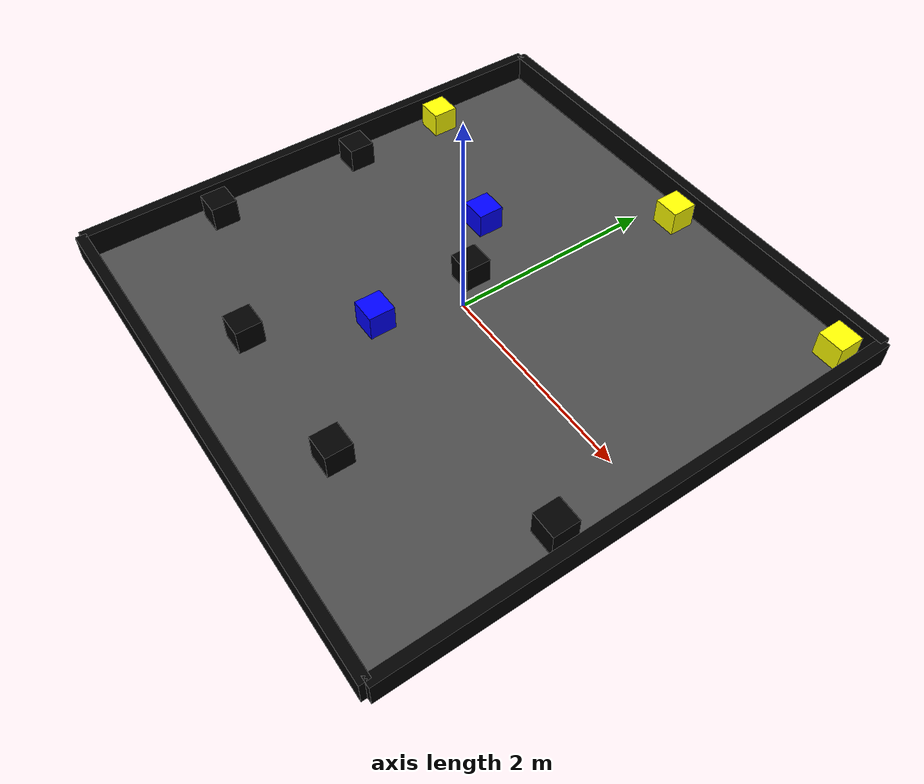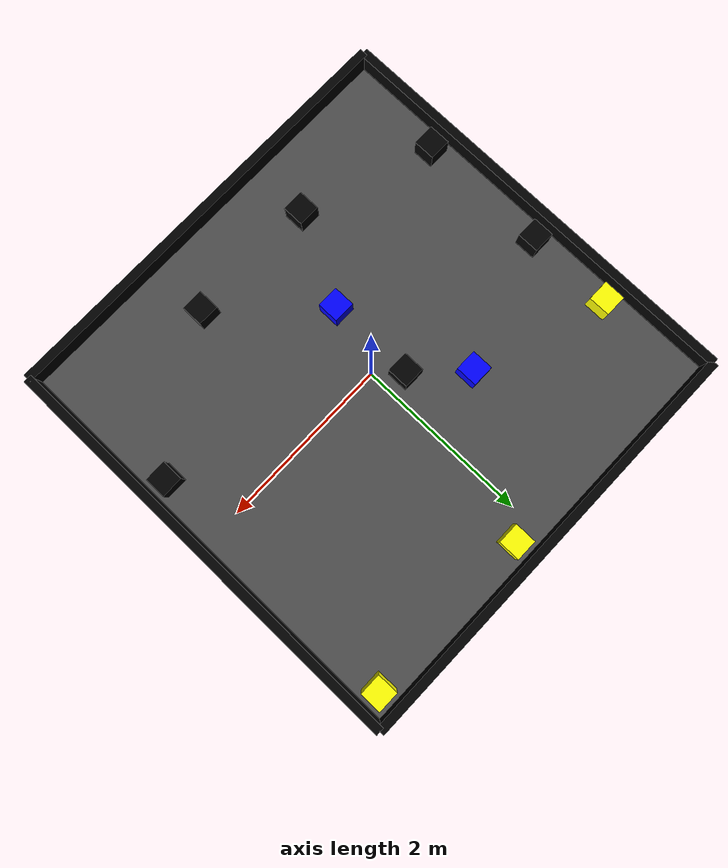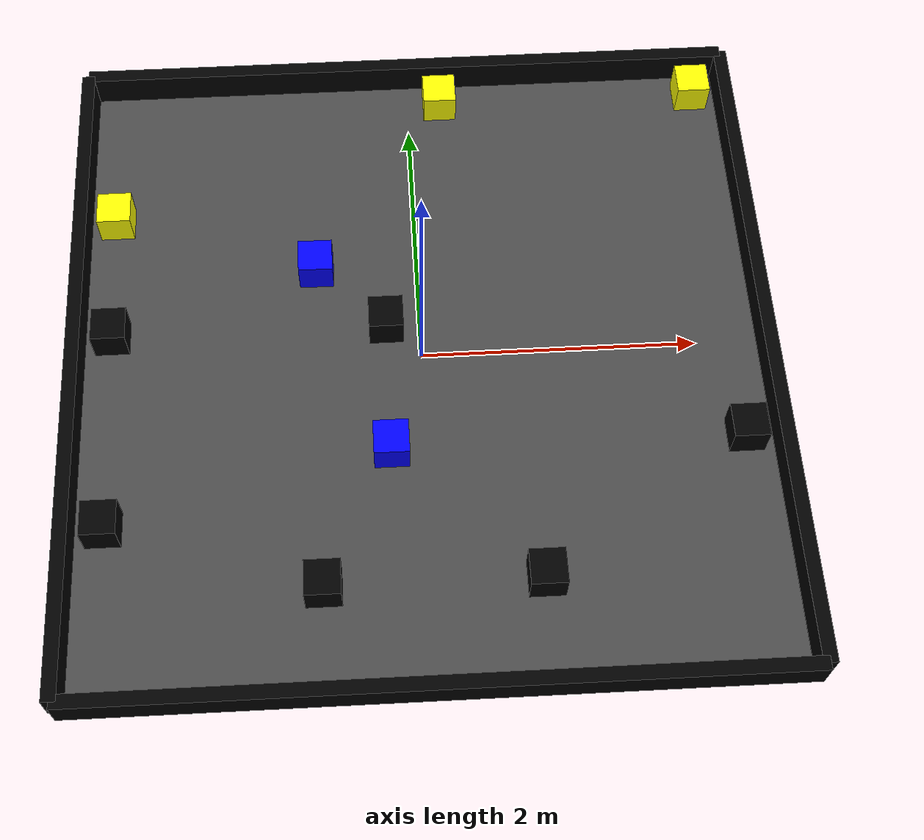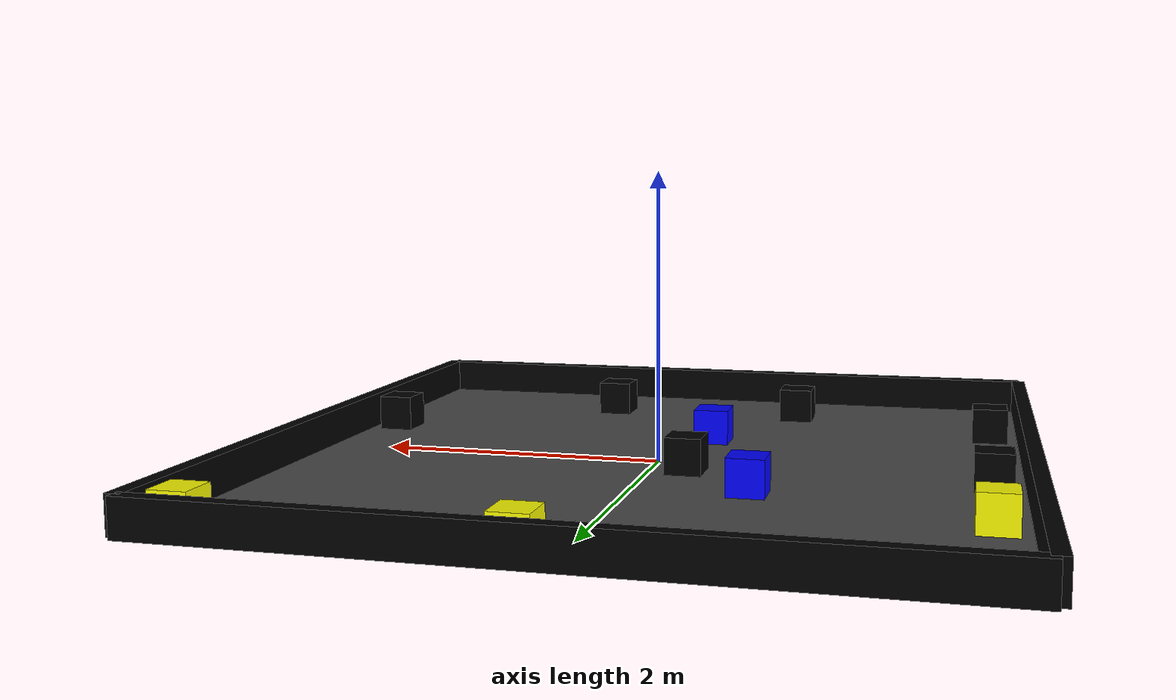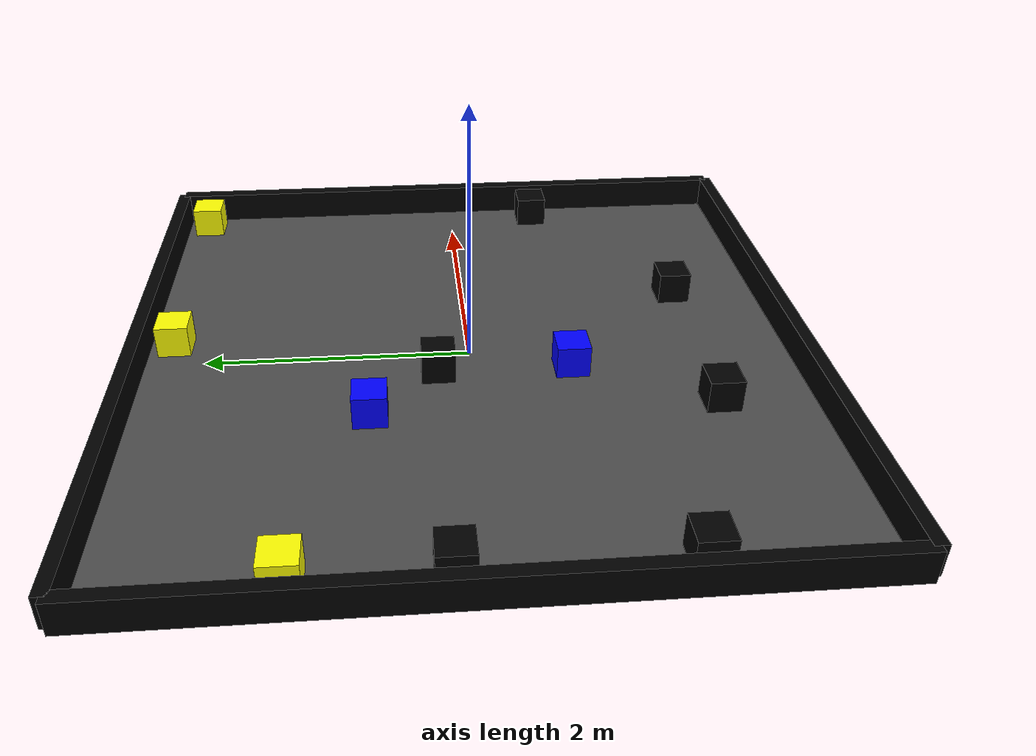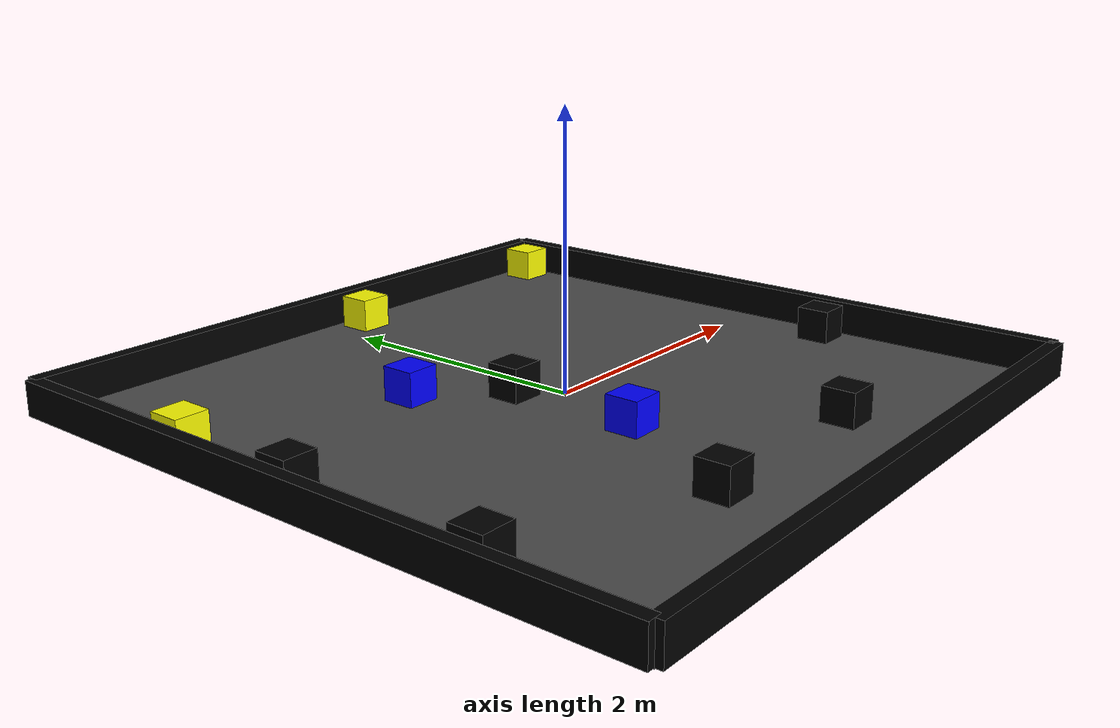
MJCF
<mujoco model="simple_navigation">
  <compiler angle="degree" coordinate="local" inertiafromgeom="true"/>
  <option integrator="RK4" timestep="0.01"/>

  <asset>
    <texture builtin="gradient" height="100" rgb1="0.6 0.8 1" rgb2="0.1 0.1 0.1" type="skybox" width="100"/>
    <texture name="floor_texture" type="2d" builtin="checker" width="100" height="100" rgb1="0.1 0.1 0.1" rgb2="0.5 0.5 0.5"/>
    <material name="MatPlane" reflectance="0.5" shininess="1" specular="1" texrepeat="5 5" texture="floor_texture"/>
  </asset>

  <contact>
    <exclude body1="agent_1" body2="floor"/>
    <exclude body1="agent_2" body2="floor"/>
  </contact>

  <extension>
    <plugin plugin="mujoco.pid">
      <instance name="pid1">
        <config key="kp" value="2"/>
        <config key="ki" value="0"/>
        <config key="kd" value="55"/>
      </instance>
    </plugin>
  </extension>

  <worldbody>
    <light cutoff="100" diffuse="0.9 0.9 0.9" dir="-0 0 -1.3" directional="true" exponent="1" pos="0 0 1.3" specular=".1 .1 .1"/>
    <body name="floor" pos="0 0 0">
        <geom name="floor_geom" type="plane" size="2.5 2.5 0.1" material="MatPlane"/>
    </body>
    <body name="agent_1" pos="-0.750000 0.750000 0.125000">
        <joint name="agent_1_j1" type="slide" axis="1 0 0"/>
        <joint name="agent_1_j2" type="slide" axis="0 1 0"/>
        <geom name="agent_geom_1_geom" type="box" size="0.125 0.125 0.125" rgba="0 0 1 1"/>
    </body>
    <body name="agent_2" pos="-0.250000 -0.750000 0.125000">
        <joint name="agent_2_j1" type="slide" axis="1 0 0"/>
        <joint name="agent_2_j2" type="slide" axis="0 1 0"/>
        <geom name="agent_geom_2_geom" type="box" size="0.125 0.125 0.125" rgba="0 0 1 1"/>
    </body>
    <body name="target_1" pos="0.250000 2.250000 0.125000">
        <geom name="target_geom_1" type="box" size="0.125000 0.125000 0.125000" rgba="1 1 0 1"/>
    </body>
    <body name="target_2" pos="-2.250000 1.250000 0.125000">
        <geom name="target_geom_2" type="box" size="0.125000 0.125000 0.125000" rgba="1 1 0 1"/>
    </body>
    <body name="target_3" pos="2.250000 2.250000 0.125000">
        <geom name="target_geom_3" type="box" size="0.125000 0.125000 0.125000" rgba="1 1 0 1"/>
    </body>
    <body name="obstacle_1" pos="2.250000 -0.750000 0.125000">
        <geom name="obstacle_geom_1" type="box" size="0.125000 0.125000 0.125000" rgba="0 0 0 1"/>
    </body>
    <body name="obstacle_2" pos="-0.250000 0.250000 0.125000">
        <geom name="obstacle_geom_2" type="box" size="0.125000 0.125000 0.125000" rgba="0 0 0 1"/>
    </body>
    <body name="obstacle_3" pos="0.750000 -1.750000 0.125000">
        <geom name="obstacle_geom_3" type="box" size="0.125000 0.125000 0.125000" rgba="0 0 0 1"/>
    </body>
    <body name="obstacle_4" pos="-2.250000 0.250000 0.125000">
        <geom name="obstacle_geom_4" type="box" size="0.125000 0.125000 0.125000" rgba="0 0 0 1"/>
    </body>
    <body name="obstacle_5" pos="-0.750000 -1.750000 0.125000">
        <geom name="obstacle_geom_5" type="box" size="0.125000 0.125000 0.125000" rgba="0 0 0 1"/>
    </body>
    <body name="obstacle_6" pos="-2.250000 -1.250000 0.125000">
        <geom name="obstacle_geom_6" type="box" size="0.125000 0.125000 0.125000" rgba="0 0 0 1"/>
    </body>
    <geom name="wall_west"  type="box" pos="-2.5  0  0.125" size="0.05 2.5 0.125" rgba="0 0 0 1" contype="1" conaffinity="1"/>
    <geom name="wall_east"  type="box" pos=" 2.5  0  0.125" size="0.05 2.5  0.125" rgba="0 0 0 1" contype="1" conaffinity="1"/>
    <geom name="wall_south" type="box" pos="  0 -2.5 0.125" size="2.5  0.05 0.125" rgba="0 0 0 1" contype="1" conaffinity="1"/>
    <geom name="wall_north" type="box" pos="  0  2.5 0.125" size="2.5 0.05 0.125" rgba="0 0 0 1" contype="1" conaffinity="1"/>
  </worldbody>

  <actuator>
    <plugin joint="agent_1_j1" plugin="mujoco.pid" instance="pid1"/>
    <plugin joint="agent_1_j2" plugin="mujoco.pid" instance="pid1"/>
    <plugin joint="agent_2_j1" plugin="mujoco.pid" instance="pid1"/>
    <plugin joint="agent_2_j2" plugin="mujoco.pid" instance="pid1"/>
  </actuator>
</mujoco>
